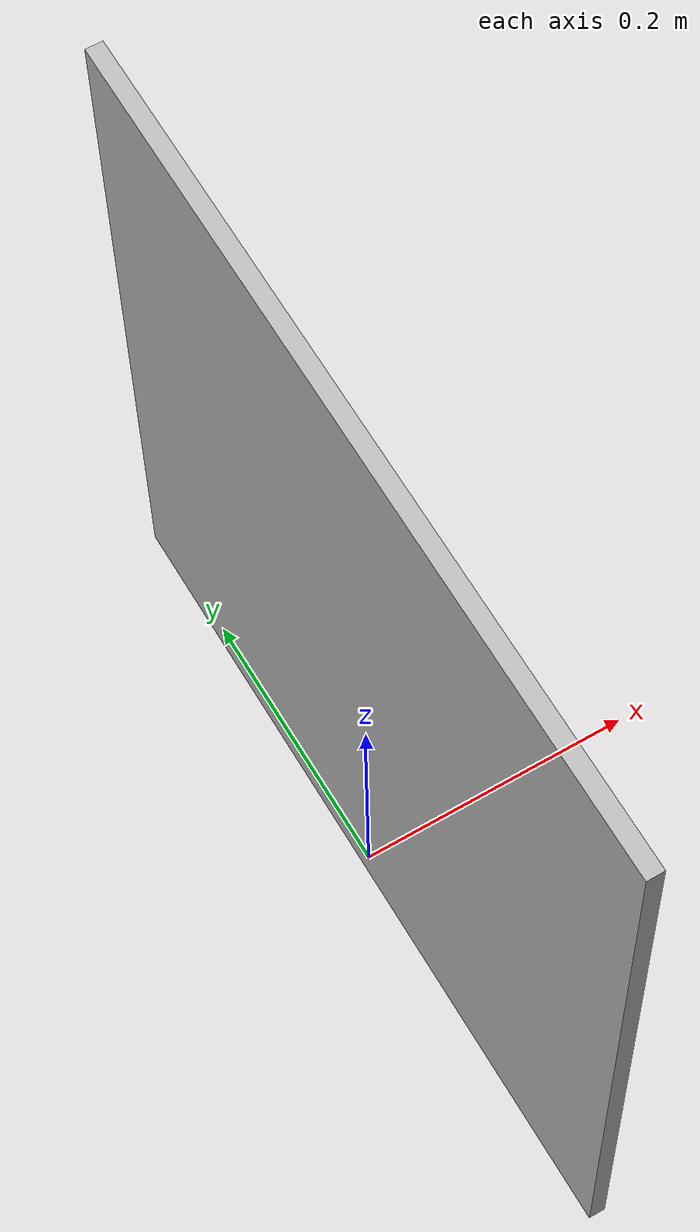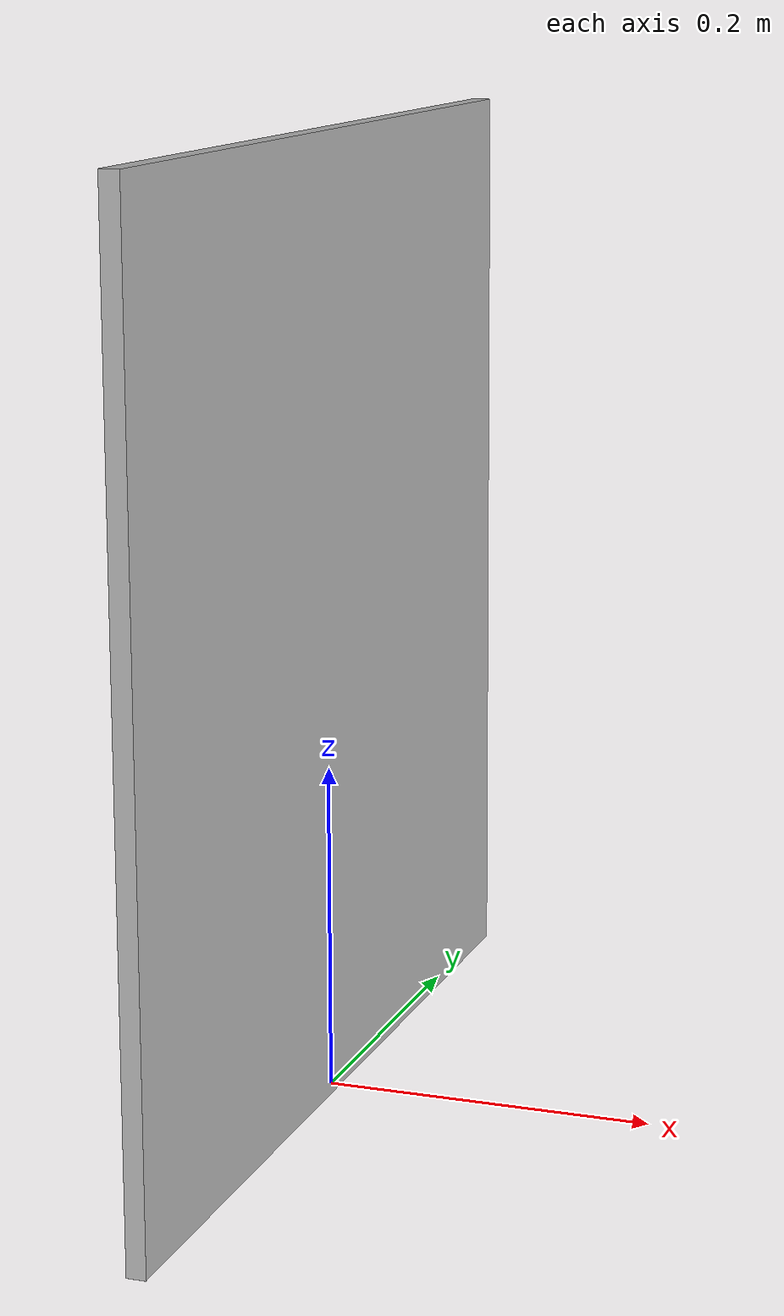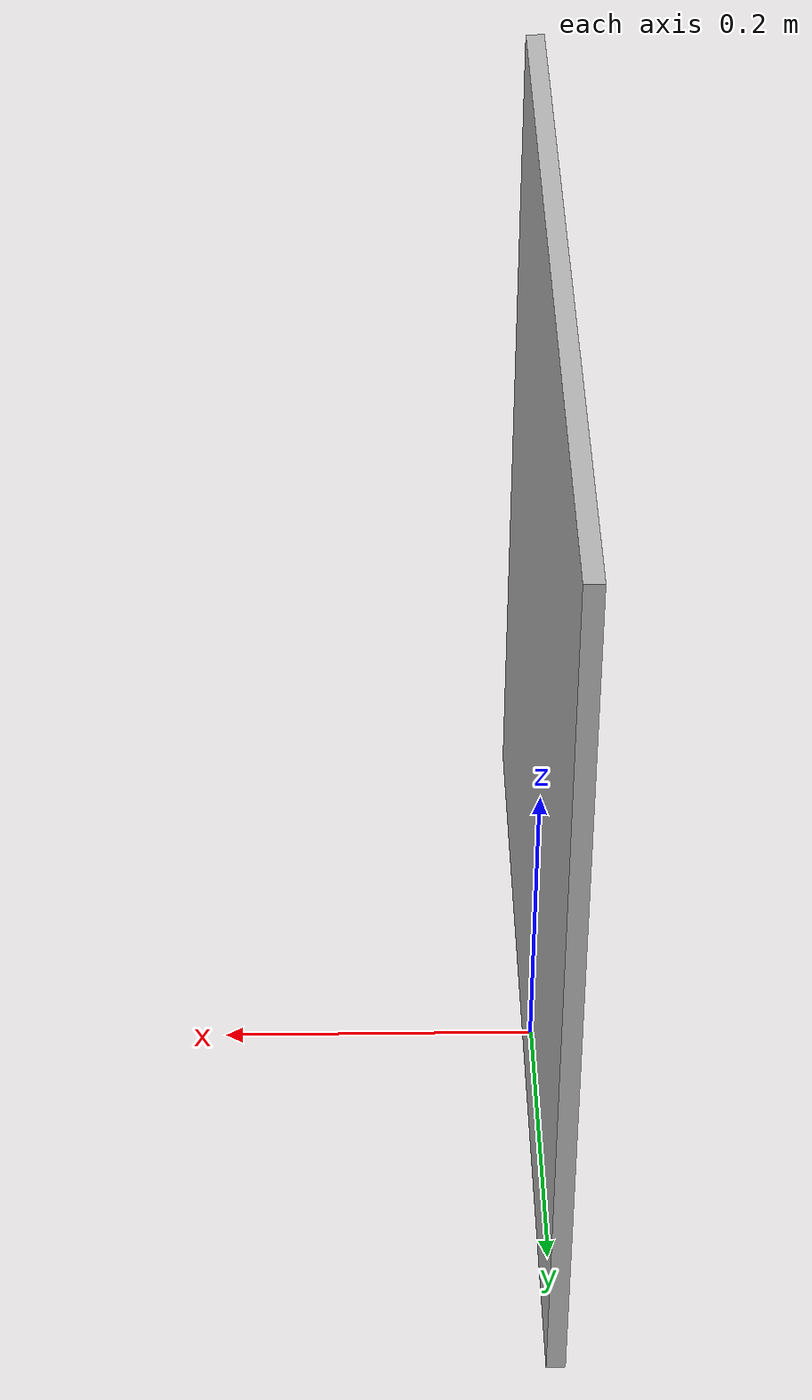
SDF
<?xml version="1.0" ?><sdf version="1.5">
  <model name="Marker0">
    <static>true</static>
    <link name="link">
      <visual name="visual">
        <geometry>
          <mesh>
            <uri>model://marker0/meshes/Marker0.dae</uri>
          <scale>1.156 1.156 1.156</scale></mesh>
        </geometry>
      </visual>
    </link>
  </model>
</sdf>
